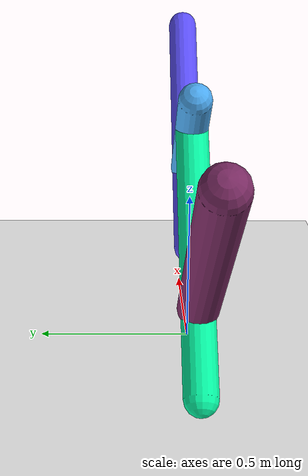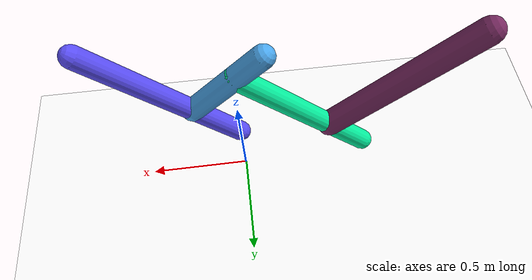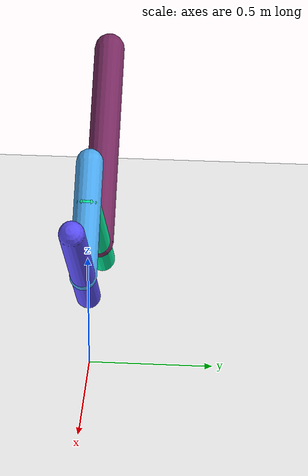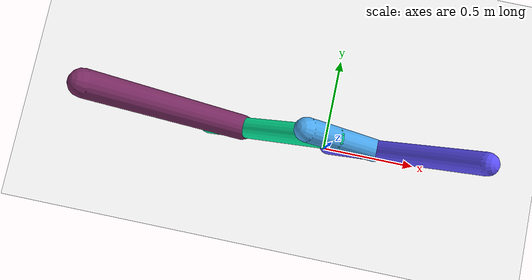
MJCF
<mujoco model="morphology">
  <option timestep="0.01"/>
  <default>
    <default class="/"/>
  </default>
  <asset>
    <texture name="texplane" type="2d" builtin="checker" rgb1="0.1 0.2 0.3" rgb2="0.2 0.3 0.4" width="300" height="300"/>
    <material name="MatPlane" class="/" texture="texplane" texrepeat="20 20" specular="1" shininess="1" reflectance="0.5"/>
  </asset>
  <worldbody>
    <light name="//unnamed_light_0" class="/" directional="true" pos="0 0 1.5" dir="0 0 -1.3" cutoff="1e+02" exponent="1" diffuse="1 1 1" specular="0.1 0.1 0.1"/>
    <geom name="ground" class="/" type="plane" size="15 15 0.5" material="MatPlane" rgba="1 1 1 1"/>
    <body name="body" pos="0 0 0.32">
      <geom name="geom0" class="/" type="capsule" contype="1" conaffinity="1" condim="3" size="0.049" rgba="0.36 0.31 0.98 1" friction="0.4 0.1 0.1" fromto="0 0 0 0.59 0 0.65"/>
      <body name="body1" pos="0.2 0 0.22">
        <geom name="geom1" class="/" type="capsule" contype="1" conaffinity="1" condim="3" size="0.054" rgba="0.3 0.67 0.95 1" friction="0.4 0.1 0.1" fromto="0 0 0 -0.34 0 0.32"/>
        <body name="body2" pos="-0.21 0 0.2">
          <geom name="geom2" class="/" type="capsule" contype="1" conaffinity="1" condim="3" size="0.053" rgba="0.02 0.95 0.63 1" friction="0.4 0.1 0.1" fromto="0 0 0 -0.63 0 -0.64"/>
          <body name="body3" pos="-0.44 0 -0.44">
            <geom name="geom3" class="/" type="capsule" contype="1" conaffinity="1" condim="3" size="0.064" rgba="0.48 0.17 0.39 1" friction="0.4 0.1 0.1" fromto="0 0 0 -0.65 0 0.58"/>
            <joint name="joint3" class="/" type="hinge" axis="0 1 0" limited="true" stiffness="20" range="-34 34" armature="0.1" damping="2"/>
          </body>
          <joint name="joint2" class="/" type="hinge" axis="0 1 0" limited="true" stiffness="20" range="-52 52" armature="0.1" damping="2"/>
        </body>
        <joint name="joint1" class="/" type="hinge" axis="0 1 0" limited="true" stiffness="20" range="-59 59" armature="0.1" damping="2"/>
      </body>
      <joint name="rootx" class="/" type="slide" axis="1 0 0" limited="false" stiffness="0" armature="0" damping="0"/>
      <joint name="rootz" class="/" type="slide" axis="0 0 1" limited="false" stiffness="0" armature="0" damping="0"/>
      <joint name="rooty" class="/" type="hinge" axis="0 1 0" limited="false" stiffness="0" armature="0" damping="0"/>
    </body>
  </worldbody>
  <actuator>
    <motor name="motor3" class="/" ctrllimited="true" ctrlrange="-1 1" gear="1.4e+02" joint="joint3"/>
    <motor name="motor2" class="/" ctrllimited="true" ctrlrange="-1 1" gear="1.8e+02" joint="joint2"/>
    <motor name="motor1" class="/" ctrllimited="true" ctrlrange="-1 1" gear="1.8e+02" joint="joint1"/>
  </actuator>
  <sensor>
    <subtreelinvel name="velocity" body="body"/>
  </sensor>
</mujoco>
